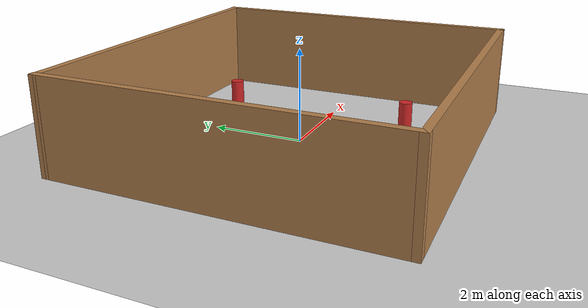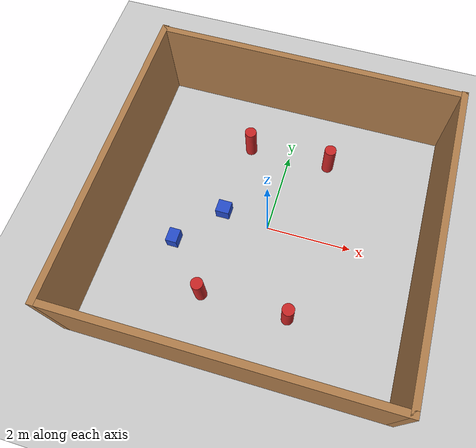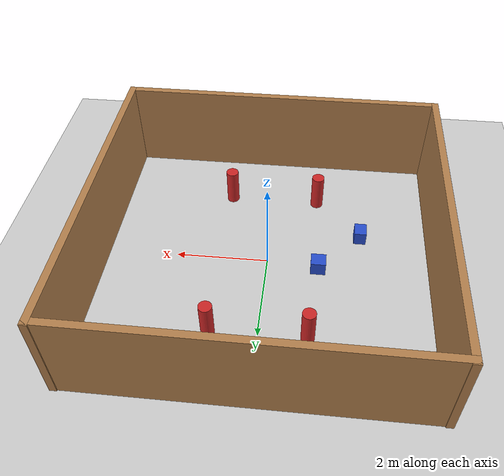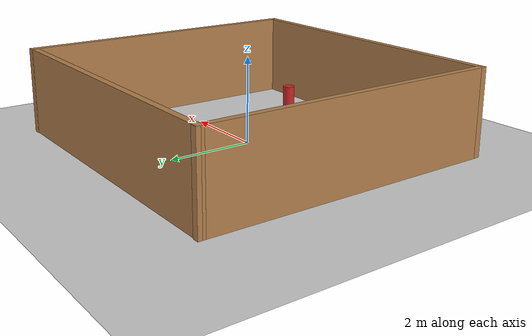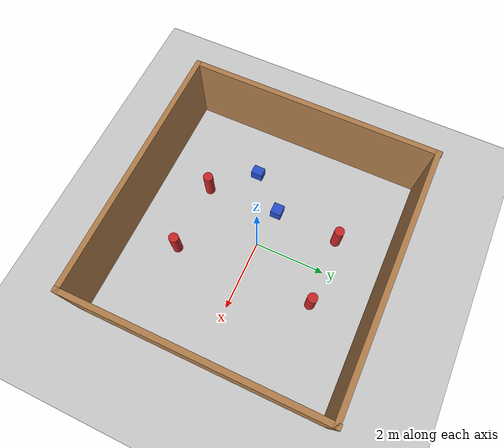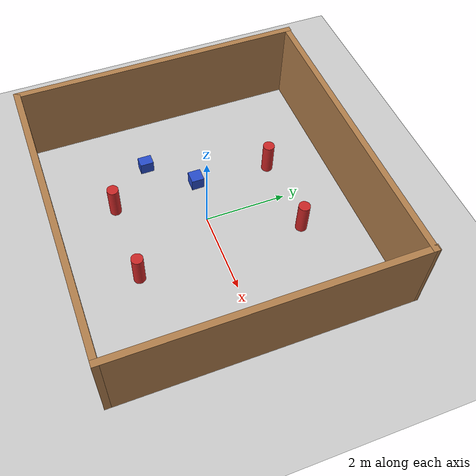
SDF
<sdf version="1.7">
 <world name="default">
  <light name="sun" type="directional">
   <pose>0 0 10 0 -0 0</pose>
   <diffuse>0.8 0.8 0.8 1</diffuse>
   <specular>0.2 0.2 0.2 1</specular>
   <attenuation>
    <range>1000</range>
    <constant>0.9</constant>
    <linear>0.01</linear>
    <quadratic>0.001</quadratic>
   </attenuation>
   <direction>-0.5 0.1 -0.9</direction>
   <spot><inner_angle>0</inner_angle><outer_angle>0</outer_angle><falloff>0</falloff></spot>
  </light>
  <model name="ground_plane">
   <static>1</static>
   <link name="link">
    <collision name="collision">
     <geometry><plane><normal>0 0 1</normal><size>100 100</size></plane></geometry>
     <surface>
      <contact><collide_bitmask>65535</collide_bitmask></contact>
      <friction><ode><mu>100</mu><mu2>50</mu2></ode></friction>
     </surface>
    </collision>
    <visual name="visual">
     <cast_shadows>0</cast_shadows>
     <geometry><plane><normal>0 0 1</normal><size>100 100</size></plane></geometry>
     <material>
      <script><uri>file://media/materials/scripts/gazebo.material</uri><name>Gazebo/Grey</name></script>
     </material>
    </visual>
   </link>
  </model>
  <gravity>0 0 -9.8</gravity>
  <magnetic_field>6e-06 2.3e-05 -4.2e-05</magnetic_field>
  <atmosphere type="adiabatic"/>
  <physics type="ode">
   <max_step_size>0.001</max_step_size>
   <real_time_factor>1</real_time_factor>
   <real_time_update_rate>1000</real_time_update_rate>
  </physics>
  <scene><ambient>0.4 0.4 0.4 1</ambient><background>0.7 0.7 0.7 1</background><shadows>1</shadows></scene>
  <spherical_coordinates>
   <surface_model>EARTH_WGS84</surface_model>
   <latitude_deg>0</latitude_deg>
   <longitude_deg>0</longitude_deg>
   <elevation>0</elevation>
   <heading_deg>0</heading_deg>
  </spherical_coordinates>
  <model name="world_box">
   <pose>0.008209 0.04454 -0.5 0 -0 0</pose>
   <link name="Wall_0">
    <collision name="Wall_0_Collision">
     <geometry><box><size>7.32184 0.15 2.5</size></box></geometry>
     <pose>0 0 1.25 0 -0 0</pose>
    </collision>
    <visual name="Wall_0_Visual">
     <pose>0 0 1.25 0 -0 0</pose>
     <geometry><box><size>7.32184 0.15 2.5</size></box></geometry>
     <material>
      <script><uri>file://media/materials/scripts/gazebo.material</uri><name>Gazebo/Wood</name></script>
      <ambient>1 1 1 1</ambient>
     </material>
     <meta><layer>0</layer></meta>
    </visual>
    <pose>0 3.46584 0 0 -0 -0.002805</pose>
   </link>
   <link name="Wall_3">
    <collision name="Wall_3_Collision">
     <geometry><box><size>7.12193 0.15 2.5</size></box></geometry>
     <pose>0 0 1.25 0 -0 0</pose>
    </collision>
    <visual name="Wall_3_Visual">
     <pose>0 0 1.25 0 -0 0</pose>
     <geometry><box><size>7.12193 0.15 2.5</size></box></geometry>
     <material>
      <script><uri>file://media/materials/scripts/gazebo.material</uri><name>Gazebo/Wood</name></script>
      <ambient>1 1 1 1</ambient>
     </material>
     <meta><layer>0</layer></meta>
    </visual>
    <pose>3.58591 -0.010057 0 0 -0 -1.5708</pose>
   </link>
   <link name="Wall_4">
    <collision name="Wall_4_Collision">
     <geometry><box><size>7.32182 0.15 2.5</size></box></geometry>
     <pose>0 0 1.25 0 -0 0</pose>
    </collision>
    <visual name="Wall_4_Visual">
     <pose>0 0 1.25 0 -0 0</pose>
     <geometry><box><size>7.32182 0.15 2.5</size></box></geometry>
     <material>
      <script><uri>file://media/materials/scripts/gazebo.material</uri><name>Gazebo/Wood</name></script>
      <ambient>1 1 1 1</ambient>
     </material>
     <meta><layer>0</layer></meta>
    </visual>
    <pose>0 -3.49601 0 0 -0 3.14159</pose>
   </link>
   <link name="Wall_5">
    <collision name="Wall_5_Collision">
     <geometry><box><size>7.14205 0.15 2.5</size></box></geometry>
     <pose>0 0 1.25 0 -0 0</pose>
    </collision>
    <visual name="Wall_5_Visual">
     <pose>0 0 1.25 0 -0 0</pose>
     <geometry><box><size>7.14205 0.15 2.5</size></box></geometry>
     <material>
      <script><uri>file://media/materials/scripts/gazebo.material</uri><name>Gazebo/Wood</name></script>
      <ambient>1 1 1 1</ambient>
     </material>
     <meta><layer>0</layer></meta>
    </visual>
    <pose>-3.58591 -0 0 0 -0 1.5708</pose>
   </link>
   <static>1</static>
  </model>
  <model name="unit_cylinder">
   <link name="link">
    <inertial>
     <mass>1</mass>
     <inertia><ixx>0.145833</ixx><ixy>0</ixy><ixz>0</ixz><iyy>0.145833</iyy><iyz>0</iyz><izz>0.125</izz></inertia>
    </inertial>
    <visual name="visual">
     <geometry><cylinder><radius>0.138504</radius><length>0.820386</length></cylinder></geometry>
     <material>
      <script><name>Gazebo/Red</name><uri>file://media/materials/scripts/gazebo.material</uri></script>
      <shader type="pixel"><normal_map>__default__</normal_map></shader>
      <ambient>1 0 0 1</ambient>
      <diffuse>1 0 0 1</diffuse>
      <specular>0.1 0.1 0.1 1</specular>
      <emissive>0 0 0 1</emissive>
     </material>
    </visual>
    <collision name="collision">
     <geometry><cylinder><radius>0.138504</radius><length>0.820386</length></cylinder></geometry>
     <surface>
      <friction>
       <ode><mu>1</mu><mu2>1</mu2><fdir1>0 0 0</fdir1><slip1>0</slip1><slip2>0</slip2></ode>
       <torsional>
        <coefficient>1</coefficient>
        <patch_radius>0</patch_radius>
        <surface_radius>0</surface_radius>
        <use_patch_radius>1</use_patch_radius>
        <ode><slip>0</slip></ode>
       </torsional>
      </friction>
      <bounce><restitution_coefficient>0</restitution_coefficient><threshold>1e+06</threshold></bounce>
      <contact>
       <collide_without_contact>0</collide_without_contact>
       <collide_without_contact_bitmask>1</collide_without_contact_bitmask>
       <collide_bitmask>1</collide_bitmask>
       <ode>
        <soft_cfm>0</soft_cfm>
        <soft_erp>0.2</soft_erp>
        <kp>1e+13</kp>
        <kd>1</kd>
        <max_vel>0.01</max_vel>
        <min_depth>0</min_depth>
       </ode>
       <bullet>
        <split_impulse>1</split_impulse>
        <split_impulse_penetration_threshold>-0.01</split_impulse_penetration_threshold>
        <soft_cfm>0</soft_cfm>
        <soft_erp>0.2</soft_erp>
        <kp>1e+13</kp>
        <kd>1</kd>
       </bullet>
      </contact>
     </surface>
    </collision>
   </link>
   <static>0</static>
   <pose>-0.995172 1.98985 0.410184 -0 -0 -0</pose>
  </model>
  <model name="unit_cylinder_clone">
   <link name="link">
    <inertial>
     <mass>1</mass>
     <inertia><ixx>0.145833</ixx><ixy>0</ixy><ixz>0</ixz><iyy>0.145833</iyy><iyz>0</iyz><izz>0.125</izz></inertia>
    </inertial>
    <visual name="visual">
     <geometry><cylinder><radius>0.138504</radius><length>0.820386</length></cylinder></geometry>
     <material>
      <script><name>Gazebo/Red</name><uri>file://media/materials/scripts/gazebo.material</uri></script>
      <shader type="pixel"><normal_map>__default__</normal_map></shader>
      <ambient>1 0 0 1</ambient>
      <diffuse>1 0 0 1</diffuse>
      <specular>0.1 0.1 0.1 1</specular>
      <emissive>0 0 0 1</emissive>
     </material>
    </visual>
    <collision name="collision">
     <geometry><cylinder><radius>0.138504</radius><length>0.820386</length></cylinder></geometry>
     <surface>
      <friction>
       <ode><mu>1</mu><mu2>1</mu2><fdir1>0 0 0</fdir1><slip1>0</slip1><slip2>0</slip2></ode>
       <torsional>
        <coefficient>1</coefficient>
        <patch_radius>0</patch_radius>
        <surface_radius>0</surface_radius>
        <use_patch_radius>1</use_patch_radius>
        <ode><slip>0</slip></ode>
       </torsional>
      </friction>
      <bounce><restitution_coefficient>0</restitution_coefficient><threshold>1e+06</threshold></bounce>
      <contact>
       <collide_without_contact>0</collide_without_contact>
       <collide_without_contact_bitmask>1</collide_without_contact_bitmask>
       <collide_bitmask>1</collide_bitmask>
       <ode>
        <soft_cfm>0</soft_cfm>
        <soft_erp>0.2</soft_erp>
        <kp>1e+13</kp>
        <kd>1</kd>
        <max_vel>0.01</max_vel>
        <min_depth>0</min_depth>
       </ode>
       <bullet>
        <split_impulse>1</split_impulse>
        <split_impulse_penetration_threshold>-0.01</split_impulse_penetration_threshold>
        <soft_cfm>0</soft_cfm>
        <soft_erp>0.2</soft_erp>
        <kp>1e+13</kp>
        <kd>1</kd>
       </bullet>
      </contact>
     </surface>
    </collision>
   </link>
   <static>0</static>
   <pose>-0.998055 -1.97197 0.410184 -0 -0 -0</pose>
  </model>
  <model name="unit_cylinder_clone_0">
   <link name="link">
    <inertial>
     <mass>1</mass>
     <inertia><ixx>0.145833</ixx><ixy>0</ixy><ixz>0</ixz><iyy>0.145833</iyy><iyz>0</iyz><izz>0.125</izz></inertia>
    </inertial>
    <visual name="visual">
     <geometry><cylinder><radius>0.138504</radius><length>0.820386</length></cylinder></geometry>
     <material>
      <script><name>Gazebo/Red</name><uri>file://media/materials/scripts/gazebo.material</uri></script>
      <shader type="pixel"><normal_map>__default__</normal_map></shader>
      <ambient>1 0 0 1</ambient>
      <diffuse>1 0 0 1</diffuse>
      <specular>0.1 0.1 0.1 1</specular>
      <emissive>0 0 0 1</emissive>
     </material>
    </visual>
    <collision name="collision">
     <geometry><cylinder><radius>0.138504</radius><length>0.820386</length></cylinder></geometry>
     <surface>
      <friction>
       <ode><mu>1</mu><mu2>1</mu2><fdir1>0 0 0</fdir1><slip1>0</slip1><slip2>0</slip2></ode>
       <torsional>
        <coefficient>1</coefficient>
        <patch_radius>0</patch_radius>
        <surface_radius>0</surface_radius>
        <use_patch_radius>1</use_patch_radius>
        <ode><slip>0</slip></ode>
       </torsional>
      </friction>
      <bounce><restitution_coefficient>0</restitution_coefficient><threshold>1e+06</threshold></bounce>
      <contact>
       <collide_without_contact>0</collide_without_contact>
       <collide_without_contact_bitmask>1</collide_without_contact_bitmask>
       <collide_bitmask>1</collide_bitmask>
       <ode>
        <soft_cfm>0</soft_cfm>
        <soft_erp>0.2</soft_erp>
        <kp>1e+13</kp>
        <kd>1</kd>
        <max_vel>0.01</max_vel>
        <min_depth>0</min_depth>
       </ode>
       <bullet>
        <split_impulse>1</split_impulse>
        <split_impulse_penetration_threshold>-0.01</split_impulse_penetration_threshold>
        <soft_cfm>0</soft_cfm>
        <soft_erp>0.2</soft_erp>
        <kp>1e+13</kp>
        <kd>1</kd>
       </bullet>
      </contact>
     </surface>
    </collision>
   </link>
   <static>0</static>
   <pose>1.01775 -1.98476 0.410184 -0 -0 -0</pose>
  </model>
  <model name="unit_cylinder_clone_1">
   <link name="link">
    <inertial>
     <mass>1</mass>
     <inertia><ixx>0.145833</ixx><ixy>0</ixy><ixz>0</ixz><iyy>0.145833</iyy><iyz>0</iyz><izz>0.125</izz></inertia>
    </inertial>
    <visual name="visual">
     <geometry><cylinder><radius>0.138504</radius><length>0.820386</length></cylinder></geometry>
     <material>
      <script><name>Gazebo/Red</name><uri>file://media/materials/scripts/gazebo.material</uri></script>
      <shader type="pixel"><normal_map>__default__</normal_map></shader>
      <ambient>1 0 0 1</ambient>
      <diffuse>1 0 0 1</diffuse>
      <specular>0.1 0.1 0.1 1</specular>
      <emissive>0 0 0 1</emissive>
     </material>
    </visual>
    <collision name="collision">
     <geometry><cylinder><radius>0.138504</radius><length>0.820386</length></cylinder></geometry>
     <surface>
      <friction>
       <ode><mu>1</mu><mu2>1</mu2><fdir1>0 0 0</fdir1><slip1>0</slip1><slip2>0</slip2></ode>
       <torsional>
        <coefficient>1</coefficient>
        <patch_radius>0</patch_radius>
        <surface_radius>0</surface_radius>
        <use_patch_radius>1</use_patch_radius>
        <ode><slip>0</slip></ode>
       </torsional>
      </friction>
      <bounce><restitution_coefficient>0</restitution_coefficient><threshold>1e+06</threshold></bounce>
      <contact>
       <collide_without_contact>0</collide_without_contact>
       <collide_without_contact_bitmask>1</collide_without_contact_bitmask>
       <collide_bitmask>1</collide_bitmask>
       <ode>
        <soft_cfm>0</soft_cfm>
        <soft_erp>0.2</soft_erp>
        <kp>1e+13</kp>
        <kd>1</kd>
        <max_vel>0.01</max_vel>
        <min_depth>0</min_depth>
       </ode>
       <bullet>
        <split_impulse>1</split_impulse>
        <split_impulse_penetration_threshold>-0.01</split_impulse_penetration_threshold>
        <soft_cfm>0</soft_cfm>
        <soft_erp>0.2</soft_erp>
        <kp>1e+13</kp>
        <kd>1</kd>
       </bullet>
      </contact>
     </surface>
    </collision>
   </link>
   <static>0</static>
   <pose>0.986035 2.02009 0.410184 -0 -0 -0</pose>
  </model>
  <model name="unit_box_1">
   <link name="link">
    <inertial>
     <mass>1</mass>
     <inertia>
      <ixx>0.166667</ixx>
      <ixy>0</ixy>
      <ixz>0</ixz>
      <iyy>0.166667</iyy>
      <iyz>0</iyz>
      <izz>0.166667</izz>
     </inertia>
    </inertial>
    <visual name="visual">
     <geometry><box><size>0.32452 0.311252 0.315266</size></box></geometry>
     <material>
      <script><name>Gazebo/Blue</name><uri>file://media/materials/scripts/gazebo.material</uri></script>
      <shader type="pixel"><normal_map>__default__</normal_map></shader>
      <ambient>0 0 1 1</ambient>
      <diffuse>0 0 1 1</diffuse>
      <specular>0.1 0.1 0.1 1</specular>
      <emissive>0 0 0 1</emissive>
     </material>
    </visual>
    <collision name="collision">
     <geometry><box><size>0.32452 0.311252 0.315266</size></box></geometry>
     <surface>
      <friction>
       <ode><mu>1</mu><mu2>1</mu2><fdir1>0 0 0</fdir1><slip1>0</slip1><slip2>0</slip2></ode>
       <torsional>
        <coefficient>1</coefficient>
        <patch_radius>0</patch_radius>
        <surface_radius>0</surface_radius>
        <use_patch_radius>1</use_patch_radius>
        <ode><slip>0</slip></ode>
       </torsional>
      </friction>
      <bounce><restitution_coefficient>0</restitution_coefficient><threshold>1e+06</threshold></bounce>
      <contact>
       <collide_without_contact>0</collide_without_contact>
       <collide_without_contact_bitmask>1</collide_without_contact_bitmask>
       <collide_bitmask>1</collide_bitmask>
       <ode>
        <soft_cfm>0</soft_cfm>
        <soft_erp>0.2</soft_erp>
        <kp>1e+13</kp>
        <kd>1</kd>
        <max_vel>0.01</max_vel>
        <min_depth>0</min_depth>
       </ode>
       <bullet>
        <split_impulse>1</split_impulse>
        <split_impulse_penetration_threshold>-0.01</split_impulse_penetration_threshold>
        <soft_cfm>0</soft_cfm>
        <soft_erp>0.2</soft_erp>
        <kp>1e+13</kp>
        <kd>1</kd>
       </bullet>
      </contact>
     </surface>
    </collision>
   </link>
   <static>0</static>
   <pose>-1.11928 0.12931 0.157633 0 -0 0</pose>
  </model>
  <model name="unit_box_0">
   <link name="link">
    <inertial>
     <mass>1</mass>
     <inertia>
      <ixx>0.166667</ixx>
      <ixy>0</ixy>
      <ixz>0</ixz>
      <iyy>0.166667</iyy>
      <iyz>0</iyz>
      <izz>0.166667</izz>
     </inertia>
    </inertial>
    <visual name="visual">
     <geometry><box><size>0.2645 0.334787 0.31186</size></box></geometry>
     <material>
      <script><name>Gazebo/Blue</name><uri>file://media/materials/scripts/gazebo.material</uri></script>
      <shader type="pixel"><normal_map>__default__</normal_map></shader>
      <ambient>0 0 1 1</ambient>
      <diffuse>0 0 1 1</diffuse>
      <specular>0.1 0.1 0.1 1</specular>
      <emissive>0 0 0 1</emissive>
     </material>
    </visual>
    <collision name="collision">
     <geometry><box><size>0.2645 0.334787 0.31186</size></box></geometry>
     <surface>
      <friction>
       <ode><mu>1</mu><mu2>1</mu2><fdir1>0 0 0</fdir1><slip1>0</slip1><slip2>0</slip2></ode>
       <torsional>
        <coefficient>1</coefficient>
        <patch_radius>0</patch_radius>
        <surface_radius>0</surface_radius>
        <use_patch_radius>1</use_patch_radius>
        <ode><slip>0</slip></ode>
       </torsional>
      </friction>
      <bounce><restitution_coefficient>0</restitution_coefficient><threshold>1e+06</threshold></bounce>
      <contact>
       <collide_without_contact>0</collide_without_contact>
       <collide_without_contact_bitmask>1</collide_without_contact_bitmask>
       <collide_bitmask>1</collide_bitmask>
       <ode>
        <soft_cfm>0</soft_cfm>
        <soft_erp>0.2</soft_erp>
        <kp>1e+13</kp>
        <kd>1</kd>
        <max_vel>0.01</max_vel>
        <min_depth>0</min_depth>
       </ode>
       <bullet>
        <split_impulse>1</split_impulse>
        <split_impulse_penetration_threshold>-0.01</split_impulse_penetration_threshold>
        <soft_cfm>0</soft_cfm>
        <soft_erp>0.2</soft_erp>
        <kp>1e+13</kp>
        <kd>1</kd>
       </bullet>
      </contact>
     </surface>
    </collision>
   </link>
   <static>0</static>
   <pose>-2.02307 -0.887173 0.15593 0 -0 0</pose>
  </model>
 </world>
</sdf>
